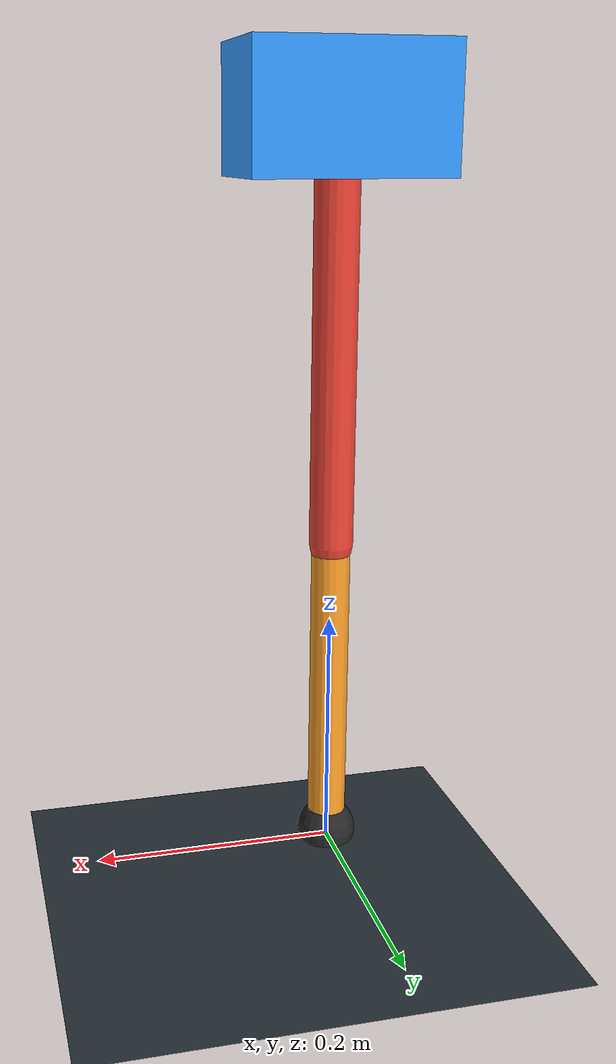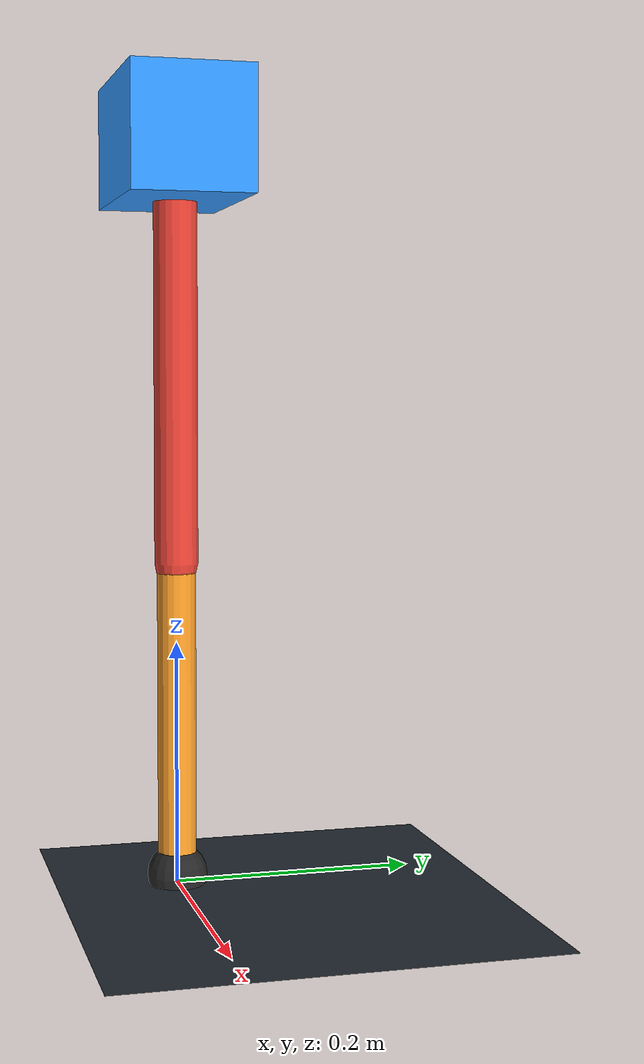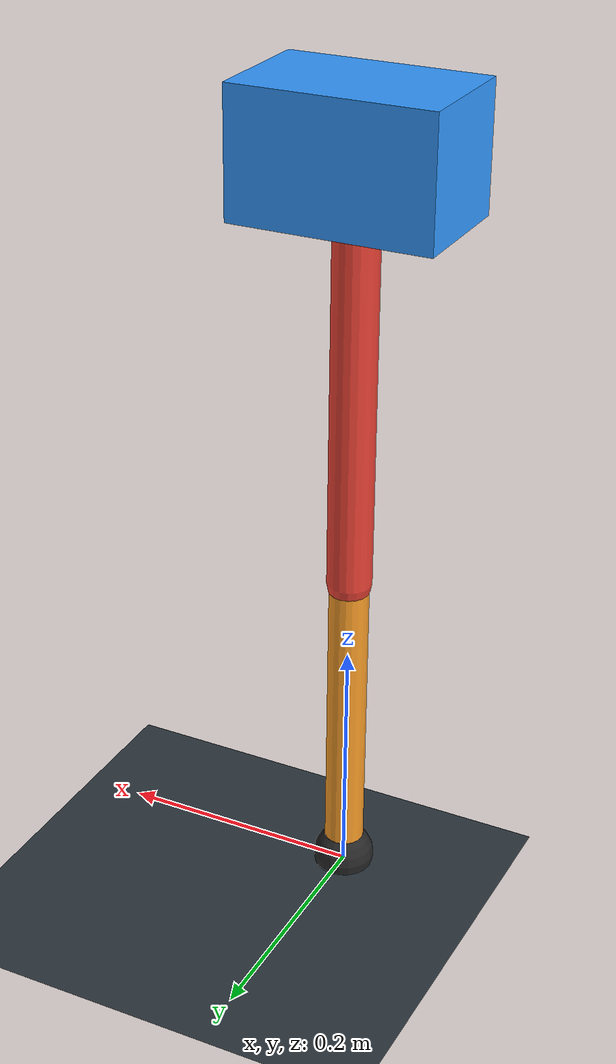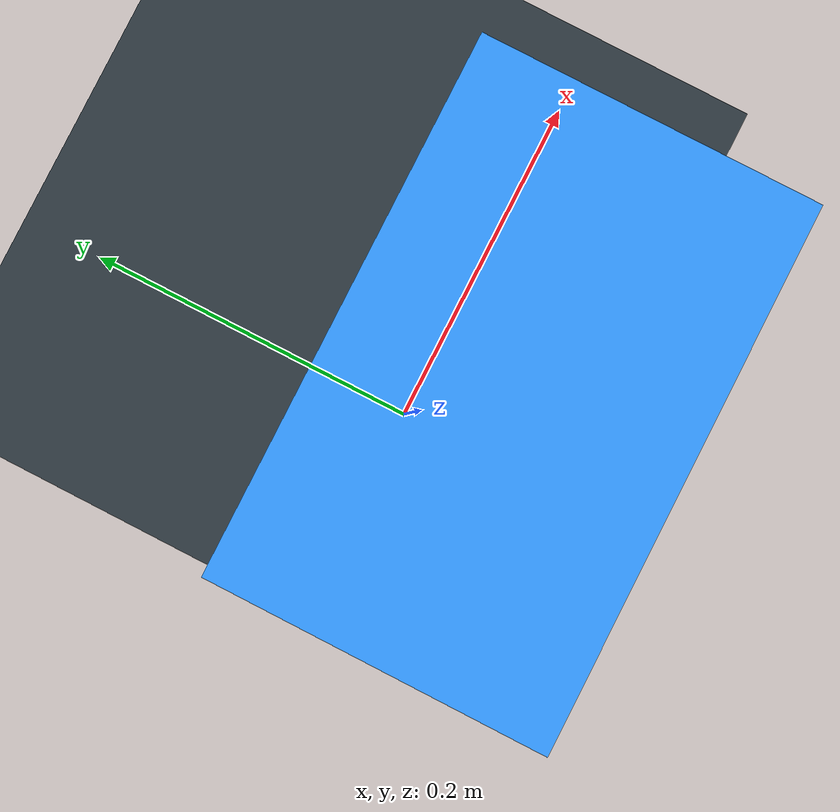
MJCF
<mujoco model="single_axis_two_bar">
  <compiler angle="radian" inertiafromgeom="true"/>
  <option timestep="0.001" integrator="implicitfast" gravity="0 0 -9.81"/>
  <default>
    <joint damping="0.08"/>
    <geom friction="1.2 0.01 0.0001" condim="3"/>
  </default>
  <worldbody>
    <geom name="floor" type="plane" size="5 5 0.1" rgba="0.18 0.22 0.25 1"/>
    <body name="carriage" pos="0 0 0.6110560534874442">
      <joint name="pole_slide" type="slide" axis="0 0 1"/>
      <geom name="payload" type="box" size="0.08 0.05 0.05" mass="2.9478774771833054" rgba="0.2 0.6 1 1"/>
      <body name="thigh" pos="0 0 0">
        <joint name="hip" type="hinge" axis="0 1 0"/>
        <geom name="thigh_link" type="capsule" fromto="0 0 0 0 0 -0.34521454591697814" size="0.018" mass="0.245969925573608" rgba="0.9 0.25 0.2 1"/>
        <body name="shank" pos="0 0 -0.34521454591697814">
          <joint name="knee" type="hinge" axis="0 1 0"/>
          <geom name="shank_link" type="capsule" fromto="0 0 0 0 0 -0.25896695252368596" size="0.016" mass="0.18451737561949114" rgba="0.95 0.6 0.15 1"/>
          <geom name="foot" type="sphere" pos="0 0 -0.25896695252368596" size="0.025" mass="0.03" rgba="0.15 0.15 0.15 1"/>
          <site name="toe" pos="0 0 -0.25896695252368596" size="0.008"/>
        </body>
      </body>
    </body>
  </worldbody>
  <actuator>
    <motor name="hip_motor" joint="hip" ctrlrange="-30.963673325177975 30.963673325177975"/>
    <motor name="knee_motor" joint="knee" ctrlrange="-101.14773390559037 101.14773390559037"/>
  </actuator>
</mujoco>
